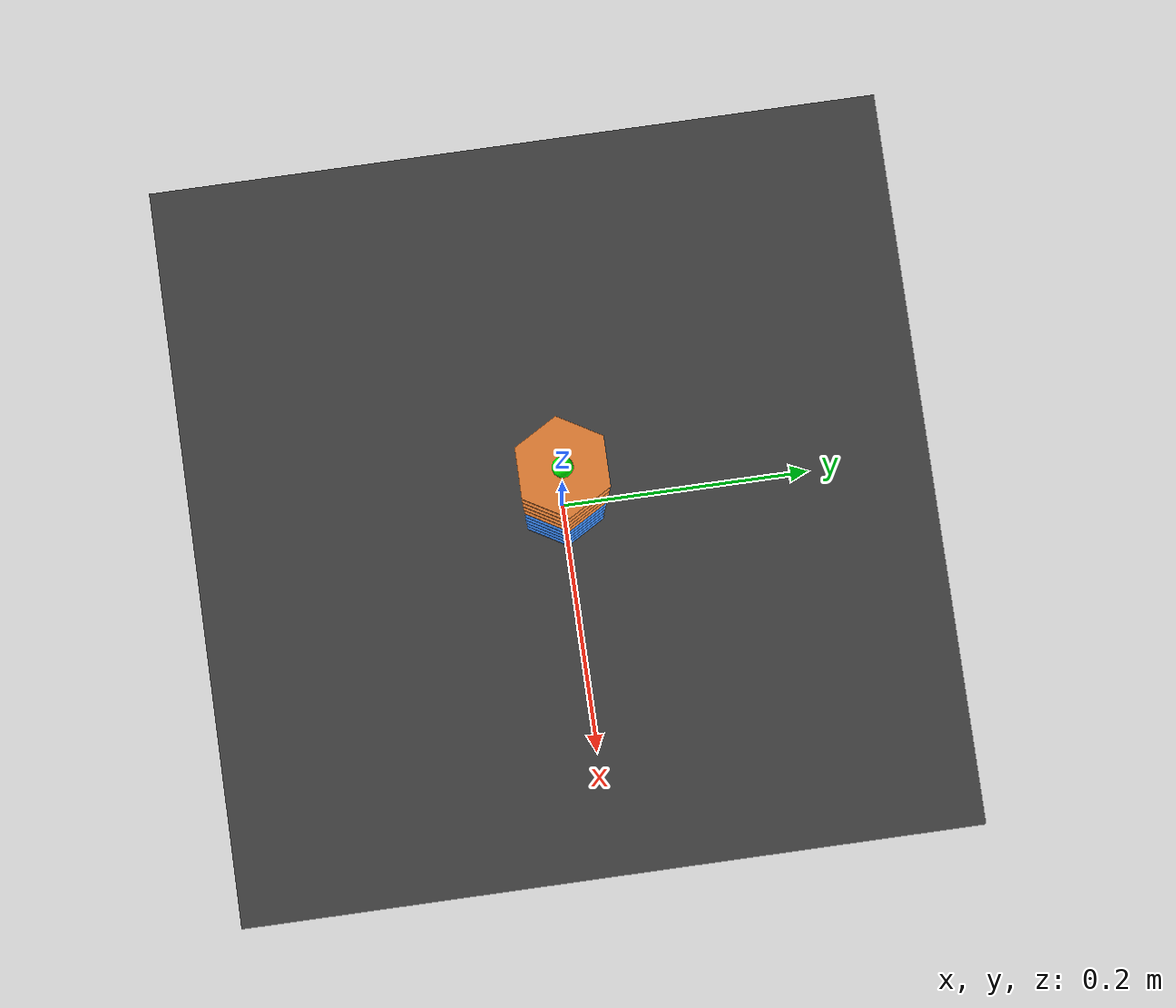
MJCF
<mujoco model="continuum_kinematic">
  <compiler angle="radian"/>

  <option timestep="0.01" gravity="0 0 0"/>

  <default>
    <joint limited="true" damping="0" armature="0"/>
    <geom contype="0" conaffinity="0" density="1000"/>
  </default>

  <asset>
    <mesh name="hex_disk" file="assets/hex_disk.stl"/>
  </asset>

  <worldbody>		#MuJoCo 世界主体（机器人、底座、灯光、地面）
    <light name="top_light" pos="0 0 1"/>
    <geom name="base_plate" type="box" pos="0 0 -0.01" size="0.3 0.3 0.01" rgba="0.25 0.25 0.25 1"/>

    <body name="base" pos="0 0 0">
      <site name="base_site" pos="0 0 0" size="0.006" rgba="1 0 0 1"/>

      <!-- section2 unit 1 -->
      <body name="sec2_u1" pos="0 0 0.03">
        <joint name="sec2_u1_bend_x" type="hinge" axis="1 0 0" range="-0.6 0.6"/>
        <joint name="sec2_u1_bend_y" type="hinge" axis="0 1 0" range="-0.6 0.6"/>
        <joint name="sec2_u1_slide_z" type="slide" axis="0 0 1" range="-0.03 0.03"/>
        <geom name="sec2_u1_disk" type="mesh" mesh="hex_disk" rgba="0.2 0.5 0.9 1"/>
        <geom name="sec2_u1_backbone" type="capsule" fromto="0 0 -0.03 0 0 0" size="0.003" rgba="0.1 0.1 0.1 1"/>

        <!-- section2 unit 2 -->
        <body name="sec2_u2" pos="0 0 0.03">
          <joint name="sec2_u2_bend_x" type="hinge" axis="1 0 0" range="-0.6 0.6"/>
          <joint name="sec2_u2_bend_y" type="hinge" axis="0 1 0" range="-0.6 0.6"/>
          <joint name="sec2_u2_slide_z" type="slide" axis="0 0 1" range="-0.03 0.03"/>
          <geom name="sec2_u2_disk" type="mesh" mesh="hex_disk" rgba="0.2 0.5 0.9 1"/>
          <geom name="sec2_u2_backbone" type="capsule" fromto="0 0 -0.03 0 0 0" size="0.003" rgba="0.1 0.1 0.1 1"/>

          <!-- section2 unit 3 -->
          <body name="sec2_u3" pos="0 0 0.03">
            <joint name="sec2_u3_bend_x" type="hinge" axis="1 0 0" range="-0.6 0.6"/>
            <joint name="sec2_u3_bend_y" type="hinge" axis="0 1 0" range="-0.6 0.6"/>
            <joint name="sec2_u3_slide_z" type="slide" axis="0 0 1" range="-0.03 0.03"/>
            <geom name="sec2_u3_disk" type="mesh" mesh="hex_disk" rgba="0.2 0.5 0.9 1"/>
            <geom name="sec2_u3_backbone" type="capsule" fromto="0 0 -0.03 0 0 0" size="0.003" rgba="0.1 0.1 0.1 1"/>

            <!-- section2 unit 4 -->
            <body name="sec2_u4" pos="0 0 0.03">
              <joint name="sec2_u4_bend_x" type="hinge" axis="1 0 0" range="-0.6 0.6"/>
              <joint name="sec2_u4_bend_y" type="hinge" axis="0 1 0" range="-0.6 0.6"/>
              <joint name="sec2_u4_slide_z" type="slide" axis="0 0 1" range="-0.03 0.03"/>
              <geom name="sec2_u4_disk" type="mesh" mesh="hex_disk" rgba="0.2 0.5 0.9 1"/>
              <geom name="sec2_u4_backbone" type="capsule" fromto="0 0 -0.03 0 0 0" size="0.003" rgba="0.1 0.1 0.1 1"/>

              <!-- section2 unit 5 -->
              <body name="sec2_u5" pos="0 0 0.03">
                <joint name="sec2_u5_bend_x" type="hinge" axis="1 0 0" range="-0.6 0.6"/>
                <joint name="sec2_u5_bend_y" type="hinge" axis="0 1 0" range="-0.6 0.6"/>
                <joint name="sec2_u5_slide_z" type="slide" axis="0 0 1" range="-0.03 0.03"/>
                <geom name="sec2_u5_disk" type="mesh" mesh="hex_disk" rgba="0.2 0.5 0.9 1"/>
                <geom name="sec2_u5_backbone" type="capsule" fromto="0 0 -0.03 0 0 0" size="0.003" rgba="0.1 0.1 0.1 1"/>

                <!-- section1 unit 1 -->
                <body name="sec1_u1" pos="0 0 0.03">
                  <joint name="sec1_u1_bend_x" type="hinge" axis="1 0 0" range="-0.6 0.6"/>
                  <joint name="sec1_u1_bend_y" type="hinge" axis="0 1 0" range="-0.6 0.6"/>
                  <joint name="sec1_u1_slide_z" type="slide" axis="0 0 1" range="-0.03 0.03"/>
                  <geom name="sec1_u1_disk" type="mesh" mesh="hex_disk" rgba="0.9 0.5 0.2 1"/>
                  <geom name="sec1_u1_backbone" type="capsule" fromto="0 0 -0.03 0 0 0" size="0.003" rgba="0.1 0.1 0.1 1"/>

                  <!-- section1 unit 2 -->
                  <body name="sec1_u2" pos="0 0 0.03">
                    <joint name="sec1_u2_bend_x" type="hinge" axis="1 0 0" range="-0.6 0.6"/>
                    <joint name="sec1_u2_bend_y" type="hinge" axis="0 1 0" range="-0.6 0.6"/>
                    <joint name="sec1_u2_slide_z" type="slide" axis="0 0 1" range="-0.03 0.03"/>
                    <geom name="sec1_u2_disk" type="mesh" mesh="hex_disk" rgba="0.9 0.5 0.2 1"/>
                    <geom name="sec1_u2_backbone" type="capsule" fromto="0 0 -0.03 0 0 0" size="0.003" rgba="0.1 0.1 0.1 1"/>

                    <!-- section1 unit 3 -->
                    <body name="sec1_u3" pos="0 0 0.03">
                      <joint name="sec1_u3_bend_x" type="hinge" axis="1 0 0" range="-0.6 0.6"/>
                      <joint name="sec1_u3_bend_y" type="hinge" axis="0 1 0" range="-0.6 0.6"/>
                      <joint name="sec1_u3_slide_z" type="slide" axis="0 0 1" range="-0.03 0.03"/>
                      <geom name="sec1_u3_disk" type="mesh" mesh="hex_disk" rgba="0.9 0.5 0.2 1"/>
                      <geom name="sec1_u3_backbone" type="capsule" fromto="0 0 -0.03 0 0 0" size="0.003" rgba="0.1 0.1 0.1 1"/>

                      <!-- section1 unit 4 -->
                      <body name="sec1_u4" pos="0 0 0.03">
                        <joint name="sec1_u4_bend_x" type="hinge" axis="1 0 0" range="-0.6 0.6"/>
                        <joint name="sec1_u4_bend_y" type="hinge" axis="0 1 0" range="-0.6 0.6"/>
                        <joint name="sec1_u4_slide_z" type="slide" axis="0 0 1" range="-0.03 0.03"/>
                        <geom name="sec1_u4_disk" type="mesh" mesh="hex_disk" rgba="0.9 0.5 0.2 1"/>
                        <geom name="sec1_u4_backbone" type="capsule" fromto="0 0 -0.03 0 0 0" size="0.003" rgba="0.1 0.1 0.1 1"/>

                        <!-- section1 unit 5 -->
                        <body name="sec1_u5" pos="0 0 0.03">
                          <joint name="sec1_u5_bend_x" type="hinge" axis="1 0 0" range="-0.6 0.6"/>
                          <joint name="sec1_u5_bend_y" type="hinge" axis="0 1 0" range="-0.6 0.6"/>
                          <joint name="sec1_u5_slide_z" type="slide" axis="0 0 1" range="-0.03 0.03"/>
                          <geom name="sec1_u5_disk" type="mesh" mesh="hex_disk" rgba="0.9 0.5 0.2 1"/>
                          <geom name="sec1_u5_backbone" type="capsule" fromto="0 0 -0.03 0 0 0" size="0.003" rgba="0.1 0.1 0.1 1"/>
                          <site name="end_site" pos="0 0 0" size="0.008" rgba="0 1 0 1"/>
                        </body>
                      </body>
                    </body>
                  </body>
                </body>
              </body>
            </body>
          </body>
        </body>
      </body>
    </body>
  </worldbody>
</mujoco>
